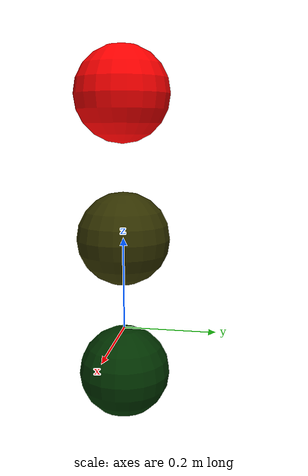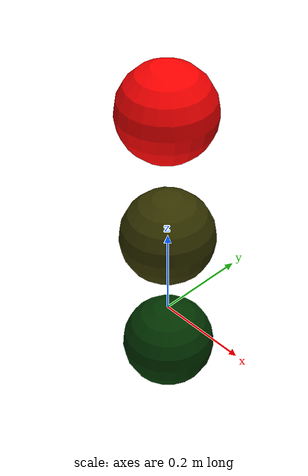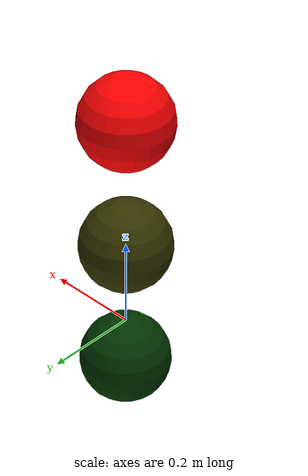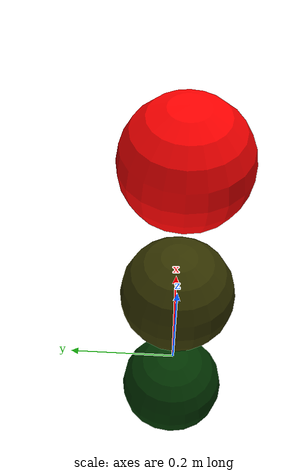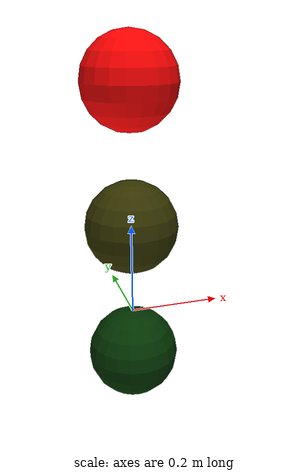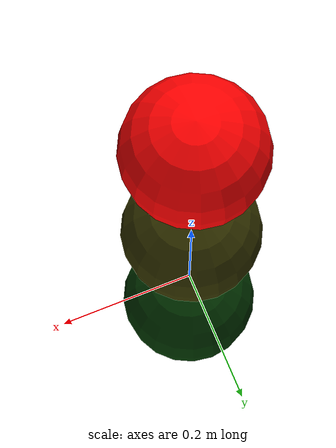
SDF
<?xml version="1.0" ?>
<sdf version="1.6">
  <model name="traffic_light">
    <static>true</static>

    <link name="body">

      <!-- RED LIGHT -->
      <visual name="red">
        <pose>0 0 0.5 0 0 0</pose>
        <geometry>
          <sphere>
            <radius>0.1</radius>
          </sphere>
        </geometry>
        <material>
          <ambient>1 0 0 1</ambient>
          <diffuse>1 0 0 1</diffuse>
          <emissive>1 0 0 1</emissive>
        </material>
      </visual>

      <!-- YELLOW LIGHT -->
      <visual name="yellow">
        <pose>0 0 0.2 0 0 0</pose>
        <geometry>
          <sphere>
            <radius>0.1</radius>
          </sphere>
        </geometry>
        <material>
          <ambient>0.2 0.2 0 1</ambient>
          <diffuse>0.2 0.2 0 1</diffuse>
          <emissive>1 1 0 1</emissive>
        </material>
      </visual>

      <!-- GREEN LIGHT -->
      <visual name="green">
        <pose>0 0 -0.1 0 0 0</pose>
        <geometry>
          <sphere>
            <radius>0.1</radius>
          </sphere>
        </geometry>
        <material>
          <ambient>0 0.2 0 1</ambient>
          <diffuse>0 0.2 0 1</diffuse>
          <emissive>0 1 0 1</emissive>
        </material>
      </visual>

    </link>

    <!-- GAZEBO PLUGIN -->
    <plugin name="traffic_light_plugin" filename="libtraffic_light_plugin.so"/>

  </model>
</sdf>
